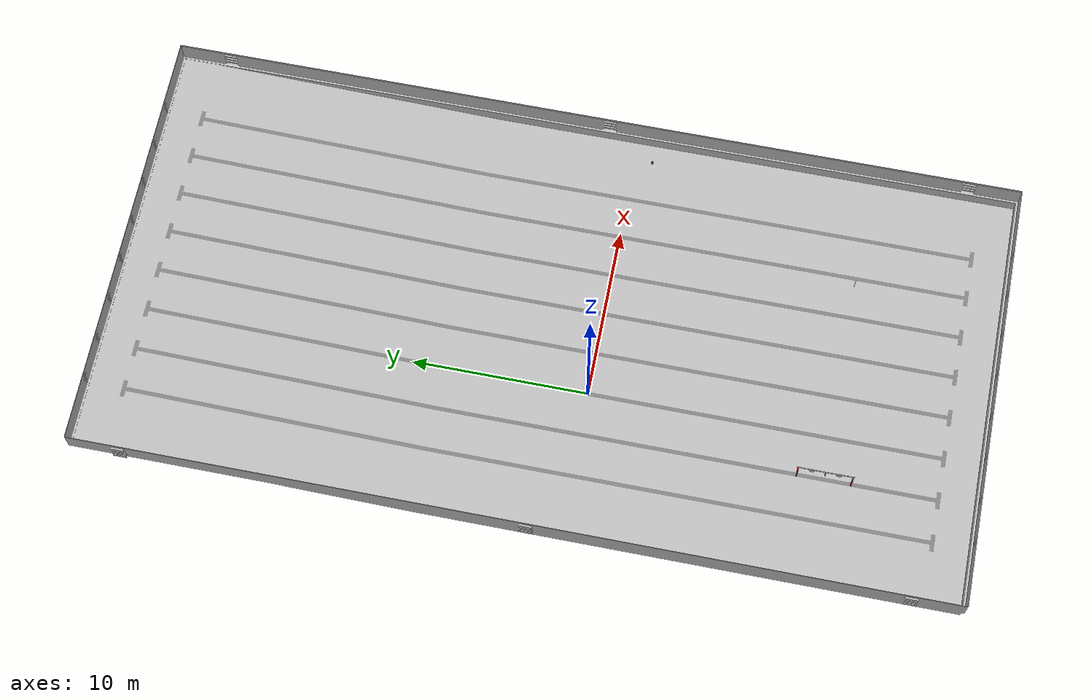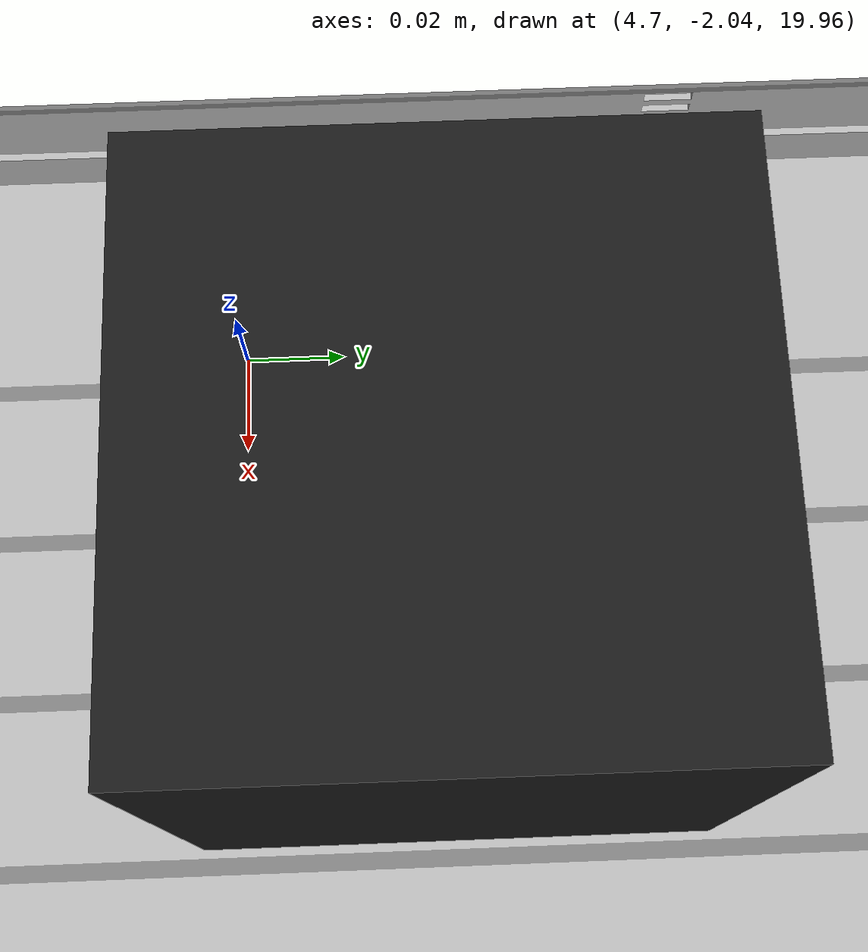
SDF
<sdf version='1.7'>
  <world name='default'>
    <light name='sun' type='directional'>
      <cast_shadows>0</cast_shadows>
      <pose>0 0 10 0 -0 0</pose>
      <diffuse>0.8 0.8 0.8 1</diffuse>
      <specular>0.2 0.2 0.2 1</specular>
      <attenuation>
        <range>1000</range>
        <constant>0.9</constant>
        <linear>0.01</linear>
        <quadratic>0.001</quadratic>
      </attenuation>
      <direction>-0.5 0.1 -0.9</direction>
      <spot>
        <inner_angle>0</inner_angle>
        <outer_angle>0</outer_angle>
        <falloff>0</falloff>
      </spot>
    </light>
    <light name='user_point_light_0' type='point'>
      <cast_shadows>0</cast_shadows>
      <pose>-5 -15 1 0 -0 0</pose>
      <diffuse>0.5 0.5 0.5 1</diffuse>
      <specular>0.1 0.1 0.1 1</specular>
      <attenuation>
        <range>20</range>
        <constant>0.5</constant>
        <linear>0.01</linear>
        <quadratic>0.001</quadratic>
      </attenuation>
      <direction>0 0 -1</direction>
    </light>
    <gravity>0 0 -9.8</gravity>
    <magnetic_field>6e-06 2.3e-05 -4.2e-05</magnetic_field>
    <atmosphere type='adiabatic'/>
    <physics type='ode'>
      <max_step_size>0.002</max_step_size>
      <real_time_factor>1</real_time_factor>
      <real_time_update_rate>500</real_time_update_rate>
    </physics>
    <wind/>
    <spherical_coordinates>
      <surface_model>EARTH_WGS84</surface_model>
      <latitude_deg>0</latitude_deg>
      <longitude_deg>0</longitude_deg>
      <elevation>0</elevation>
      <heading_deg>0</heading_deg>
    </spherical_coordinates>

    <!-- Pool - pool.world ile aynı -->
    <model name='singapore_pool'>
      <static>1</static>
      <pose>4.53158 2.81103 -2 0 -0 0</pose>
      <link name='singapore_pool'>
        <pose>0 0 0 0 -0 0</pose>
        <collision name='singapore_pool_col'>
          <pose>0 0 0 0 -0 0</pose>
          <geometry>
            <mesh>
              <uri>model://pool/meshes/pool.dae</uri>
            </mesh>
          </geometry>
          <max_contacts>10</max_contacts>
          <surface>
            <contact><ode/></contact>
            <bounce/>
            <friction>
              <torsional><ode/></torsional>
              <ode/>
            </friction>
          </surface>
        </collision>
        <visual name='singapore_pool_vis'>
          <pose>0 0 0 0 -0 0</pose>
          <geometry>
            <mesh>
              <uri>model://pool/meshes/pool.dae</uri>
            </mesh>
          </geometry>
        </visual>
        <self_collide>0</self_collide>
        <enable_wind>0</enable_wind>
        <kinematic>0</kinematic>
      </link>
    </model>

    <!-- Gate - pool.world ile aynı konum -->
    <model name='robosub_gate'>
      <static>1</static>
      <pose>-2.0 -13.7 -1.50 0 -0 3.14159</pose>
      <link name='robosub_gate'>
        <pose>0 0 0 0 -0 0</pose>
        <collision name='robosub_gate_col'>
          <pose>0 0 0 0 -0 0</pose>
          <geometry>
            <mesh>
              <uri>model://robosub_gate/meshes/gate.dae</uri>
            </mesh>
          </geometry>
          <max_contacts>10</max_contacts>
          <surface>
            <contact><ode/></contact>
            <bounce/>
            <friction>
              <torsional><ode/></torsional>
              <ode/>
            </friction>
          </surface>
        </collision>
        <visual name='robosub_gate_vis'>
          <pose>0 0 0 0 -0 0</pose>
          <geometry>
            <mesh>
              <uri>model://robosub_gate/meshes/gate.dae</uri>
            </mesh>
          </geometry>
        </visual>
        <self_collide>0</self_collide>
        <enable_wind>0</enable_wind>
        <kinematic>0</kinematic>
      </link>
    </model>

    <!-- Beyaz silindir - gate'e hizalı (y=-13.7), gate'den 12m ötede (+X yönü) -->
    <!-- Gate: x=-2.0, silindir: x=-2.0+12=10.0, y=-13.7 (gate merkezi ile hizalı) -->
    <!-- robosub_slalom ile aynı boyut ve z offset (0.45) -->
    <model name='pre_qual_cylinder'>
      <static>1</static>
      <pose>10.0 -13.7 -1.35 0 0 0</pose>
      <link name='white_pipe'>
        <pose>0 0 0.45 0 0 0</pose>
        <visual name='visual'>
          <geometry>
            <cylinder>
              <radius>0.0127</radius>
              <length>0.9</length>
            </cylinder>
          </geometry>
          <material>
            <ambient>1 1 1 1</ambient>
            <diffuse>1 1 1 1</diffuse>
          </material>
        </visual>
        <collision name='collision'>
          <geometry>
            <cylinder>
              <radius>0.0127</radius>
              <length>0.9</length>
            </cylinder>
          </geometry>
        </collision>
        <self_collide>0</self_collide>
        <enable_wind>0</enable_wind>
        <kinematic>0</kinematic>
      </link>
    </model>

    <!-- Havuz üst kamerası -->
    <model name="pool_camera">
      <static>true</static>
      <pose>4.75 -2 20 0 1.5708 0</pose>
      <link name="pool_camera_link">
        <pose>0 0 0 0 0 0</pose>
        <visual name="camera_visual">
          <geometry>
            <box><size>0.1 0.1 0.1</size></box>
          </geometry>
          <material>
            <ambient>0.1 0.1 0.1 1</ambient>
            <diffuse>0.1 0.1 0.1 1</diffuse>
          </material>
        </visual>
        <sensor name="camera_sensor" type="camera">
          <update_rate>30.0</update_rate>
          <camera name="pool_camera">
            <horizontal_fov>1.36136</horizontal_fov>
            <image>
              <width>640</width>
              <height>480</height>
              <format>B8G8R8</format>
            </image>
            <clip>
              <near>0.02</near>
              <far>300</far>
            </clip>
            <noise>
              <type>gaussian</type>
              <mean>0.0</mean>
              <stddev>0.007</stddev>
            </noise>
          </camera>
          <plugin name="camera_controller" filename="libgazebo_ros_camera.so">
            <alwaysOn>true</alwaysOn>
            <updateRate>30.0</updateRate>
            <cameraName>pool_camera</cameraName>
            <imageTopicName>image_raw</imageTopicName>
            <cameraInfoTopicName>camera_info</cameraInfoTopicName>
            <frameName>pool_camera_link</frameName>
            <hackBaseline>0.07</hackBaseline>
            <distortionK1>0.0</distortionK1>
            <distortionK2>0.0</distortionK2>
            <distortionK3>0.0</distortionK3>
            <distortionT1>0.0</distortionT1>
            <distortionT2>0.0</distortionT2>
          </plugin>
        </sensor>
      </link>
    </model>

    <scene>
      <shadows>0</shadows>
      <grid>false</grid>
      <origin_visual>false</origin_visual>
      <ambient>0.4 0.4 0.4 1</ambient>
      <background>0.7 0.7 0.7 1</background>
    </scene>
    <gui fullscreen='0'>
      <camera name='user_camera'>
        <pose>-20.0 -10.0 12.0 0 0.6 0</pose>
        <view_controller>orbit</view_controller>
        <projection_type>perspective</projection_type>
      </camera>
    </gui>

  </world>
</sdf>
